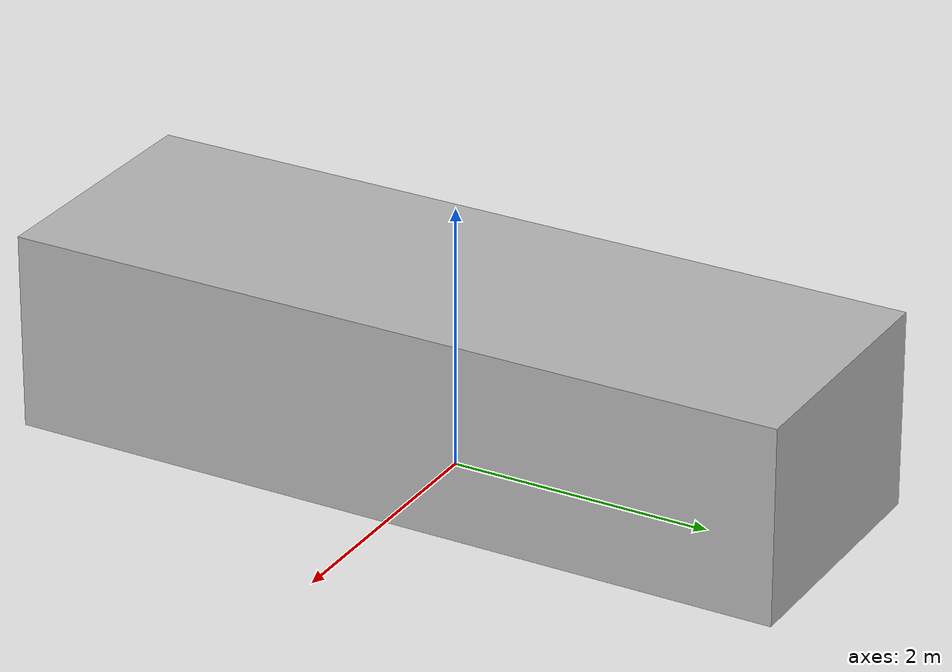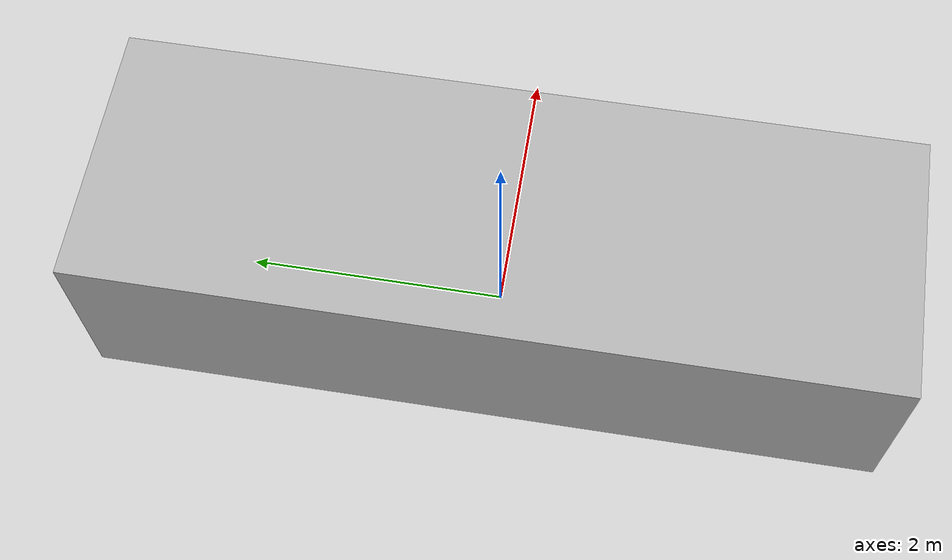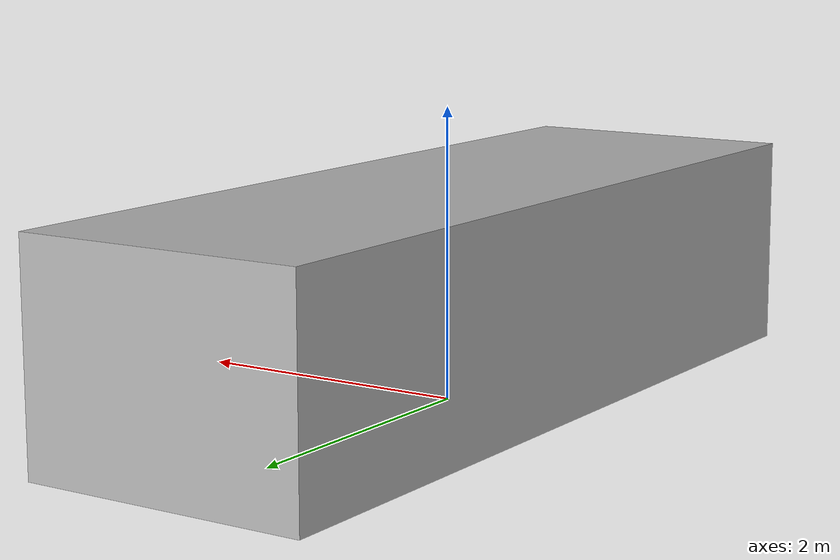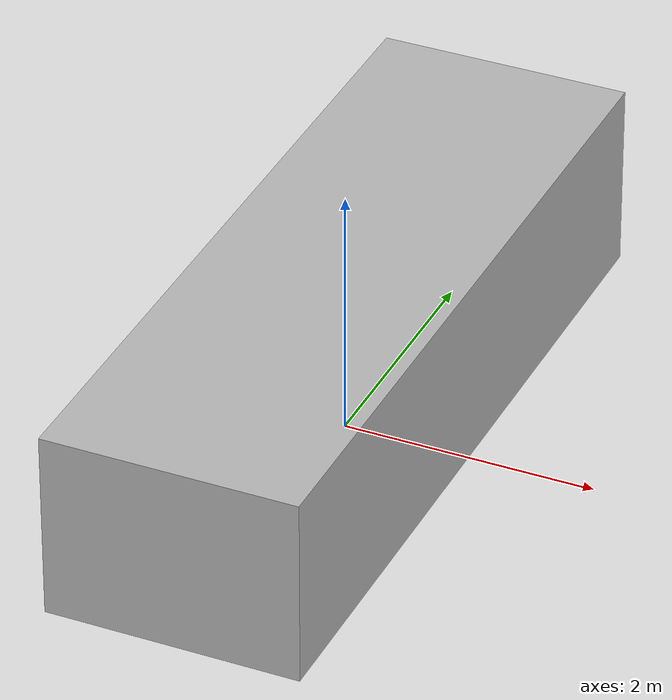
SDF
<?xml version='1.0'?>
<sdf version='1.6'>
  <model name='cluttered_enviroment'>
  <static> true </static>
    <link name='link_cluttered_enviroment'>
      <pose>0 0 0 0 0 3.14159</pose>
      <visual name='visual'>
        <geometry>
          <mesh>
            <uri>model://cluttered_enviroment/meshes/cluttered_enviroment.obj</uri>
            <scale>1 1 1</scale>
          </mesh>
        </geometry>
      </visual>
      <collision name='collision'>
        <pose>0 0 0 0 0 0</pose>
        <geometry>
          <mesh>
            <uri>model://cluttered_enviroment/meshes/cluttered_enviroment.obj</uri>
            <scale>1 1 1</scale>
          </mesh>
        </geometry>
      </collision>
    </link>
  </model>
</sdf>
